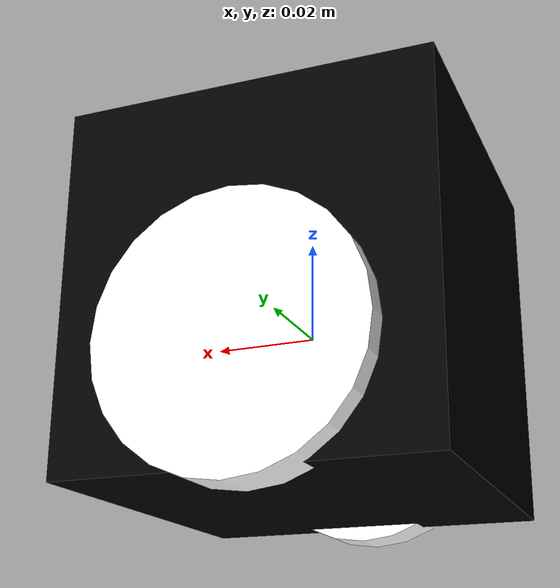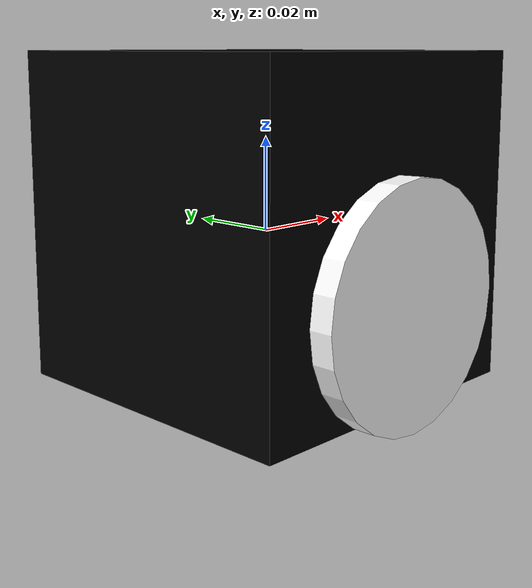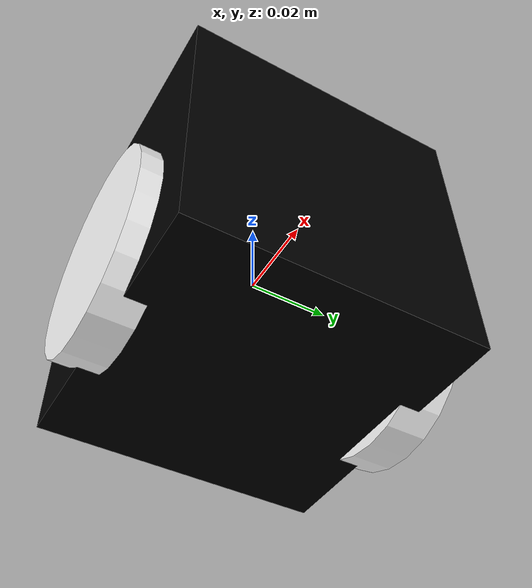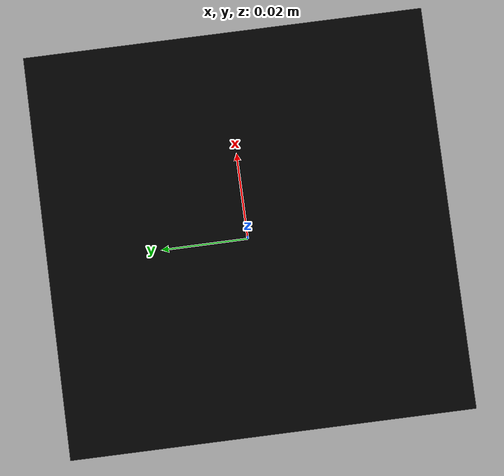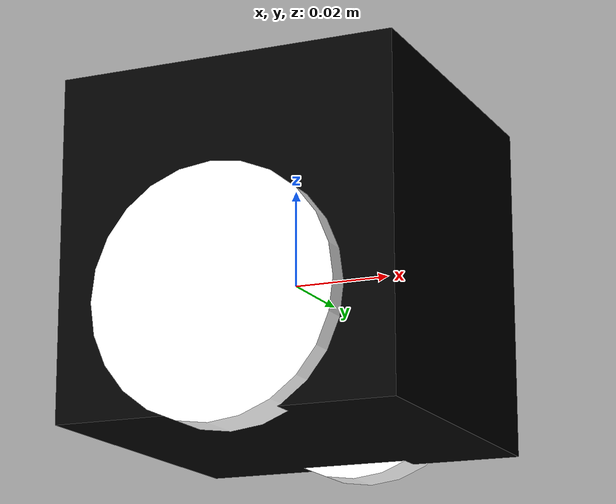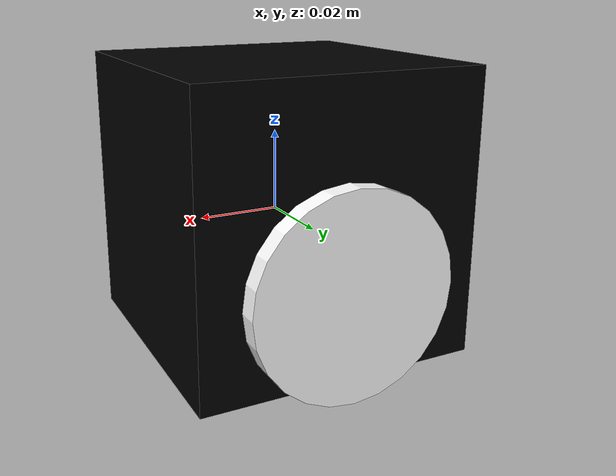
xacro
<?xml version="1.0"?>
<!-- Miabot PRO - Miniature Intelligent Autonomous roBOT -->
<!-- Merlin Systems Corp. Ltd -->
<!-- www.merlinsytsemscorp.co.uk -->
<!-- Author: Mark Norman 8th January 2011 -->
<!-- Exapnsion kit definitions to follow: Sonar, Compass, Gripper, OnBoard Camera-->
<!--                                      Kinect, Line Follower -->

<robot name="miabot"
      xmlns:xacro="http://www.ros.org/wiki/xacro"
       xmlns:xi="http://www.w3.org/2001/XInclude"
       xmlns:gazebo="http://playerstage.sourceforge.net/gazebo/xmlschema/#gz"
       xmlns:model="http://playerstage.sourceforge.net/gazebo/xmlschema/#model"
       xmlns:sensor="http://playerstage.sourceforge.net/gazebo/xmlschema/#sensor"
       xmlns:body="http://playerstage.sourceforge.net/gazebo/xmlschema/#body"
       xmlns:geom="http://playerstage.sourceforge.net/gazebo/xmlschema/#geom"
       xmlns:joint="http://playerstage.sourceforge.net/gazebo/xmlschema/#joint"
       xmlns:interface="http://playerstage.sourceforge.net/gazebo/xmlschema/#interface"
       xmlns:rendering="http://playerstage.sourceforge.net/gazebo/xmlschema/#rendering"
       xmlns:renderable="http://playerstage.sourceforge.net/gazebo/xmlschema/#renderable"
       xmlns:controller="http://playerstage.sourceforge.net/gazebo/xmlschema/#controller"
       xmlns:physics="http://playerstage.sourceforge.net/gazebo/xmlschema/#physics">

	<xacro:property name="body_width" value=".07" />
	<xacro:property name="body_length" value=".07" />
	<xacro:property name="body_height" value=".07" />
	<xacro:property name="wheel_radius" value=".025" />
	<xacro:property name="wheel_length" value=".01" />
	<xacro:property name="body_clearance" value=".003" />
	<xacro:property name="wheel_offset" value="${-((body_height/2.0)-wheel_radius)}" />

	<!-- Links: inertial,visual,collision -->
        <link name="base_link">
                <inertial>
                        <!-- origin is relative -->
                        <origin xyz="0 0 0" rpy="0 0 0"/>
                        <mass value="5"/>
                        <inertia ixx="5" ixy="0" ixz="0" iyy="5" iyz="0" izz="5"/>
                </inertial>
                <visual>
                        <origin xyz="0 0 ${body_clearance}" rpy="0 0 0"/>
                        <geometry>
                                <box size="${body_width} ${body_length} ${body_height}"/>
                        </geometry>
			<material name="black">
				<color rgba="0 0 0 0"/>
	      		</material>
                </visual>
		<collision>
		      <geometry>
                                <box size="${body_width} ${body_length} ${body_height}"/>
		      </geometry>
    		</collision>
	</link>

	<xacro:macro name="wheel" params="prefix r g b">
		<link name="${prefix}_wheel" params="r g b">
		        <inertial>
		                <origin xyz="0 0 0" rpy="0 0 0"/>
		                <mass value="1"/>
		                <inertia ixx="0.2" ixy="0" ixz="0" iyy="0.2" iyz="0" izz="0.2"/>
		        </inertial>
		        <visual>
		                <origin xyz="0 0 0" rpy="0 1.57 1.57"/>
		                <geometry>
		                        <cylinder radius="${wheel_radius}" length="${wheel_length}"/>
		                </geometry>
				<material name="white">
					<color rgba="${r} ${g} ${b} 1"/>
		      		</material>
		        </visual>
		</link>
	</xacro:macro>

	<xacro:wheel prefix="left" r="1" g="1" b="1"/>
	<xacro:wheel prefix="right" r="1" g="1" b="1"/>

	<xacro:macro name="wheeljoint" params="prefix reflect r g b">
		<!-- Joints: axis,limit,dynamics,orign,parent,child -->
		<joint name="${prefix}_joint" type="continuous">
		        <parent link="base_link"/>
		        <child link="${prefix}_wheel" r="${r}" g="${g}" b="${b}" />
		        <origin xyz="0 ${reflect*(body_length/2)} ${wheel_offset}"/>
		        <axis xyz="1 0 0"/>
    			<limit effort="100" velocity="100"/>
    			<joint_properties damping="0.0" friction="0.0"/>
		</joint>
	</xacro:macro>

	<xacro:wheeljoint prefix="left" reflect="-1" r="1" g="1" b="1"/>
	<xacro:wheeljoint prefix="right" reflect="1" r="1" g="1" b="1"/>

	<xacro:macro name="jointtransmission" params="prefix">
		<!-- Transmission is important to link the joints and the controller -->
		<transmission name="${prefix}_joint_trans" type="SimpleTransmission">
		        <actuator name="${prefix}_joint_motor" />
		        <joint name="{$prefix}_joint" />
		        <mechanicalReduction>1</mechanicalReduction>
		        <motorTorqueConstant>1</motorTorqueConstant>
		</transmission>
	</xacro:macro>

	<xacro:jointtransmission prefix="left"/>
	<xacro:jointtransmission prefix="right"/>

        <!-- Colour -->
        <gazebo reference="base_link">
          <material>Gazebo/Green</material>
        </gazebo>

        <gazebo reference="left_wheel">
          <material>Gazebo/Red</material>
        </gazebo>

        <gazebo reference="right_wheel">
          <material>Gazebo/Blue</material>
        </gazebo>
</robot>
